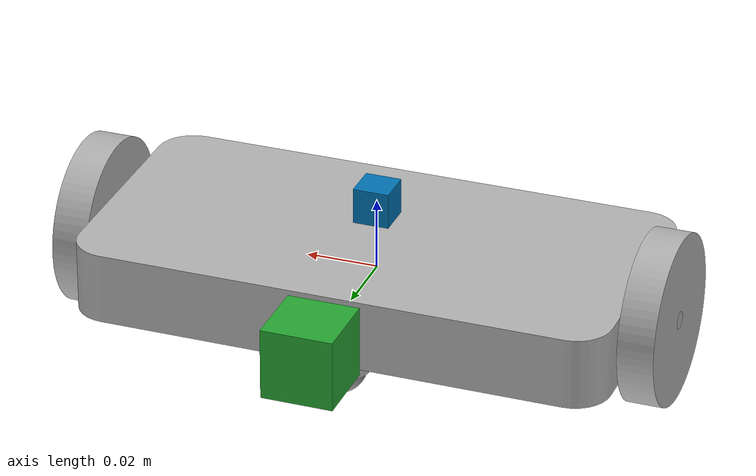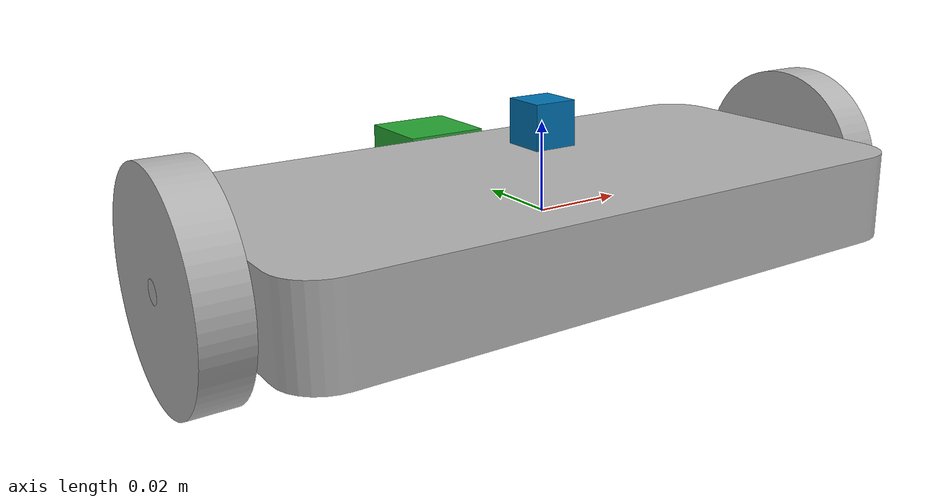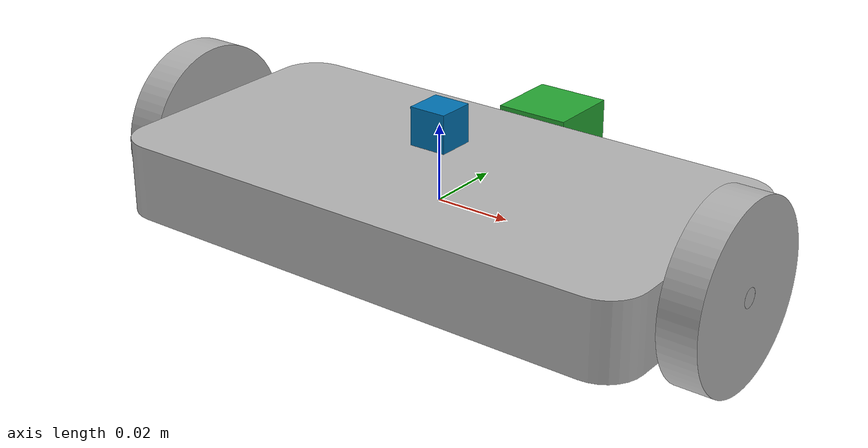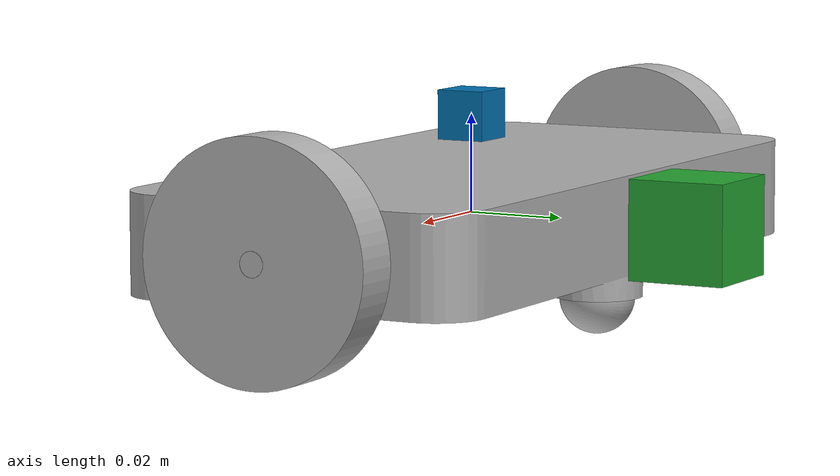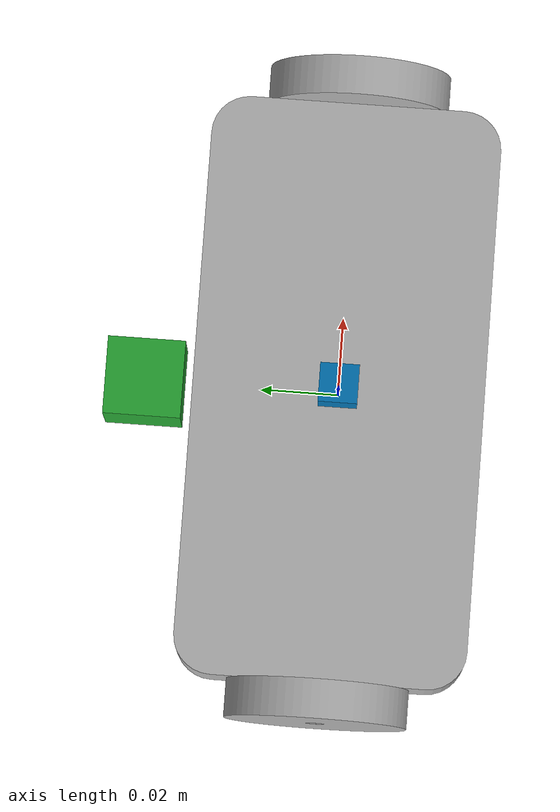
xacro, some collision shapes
<?xml version="1.0" ?>
<robot name="usb" xmlns:xacro="http://www.ros.org/wiki/xacro">

<xacro:include filename="$(find usb_description)/urdf/materials.xacro" />
<xacro:include filename="$(find usb_description)/urdf/usb.trans" />
<xacro:include filename="$(find usb_description)/urdf/usb.gazebo" />

<xacro:property name="cameraSize" value="0.005"/>
<xacro:property name="cameraMass" value="0.1"/>

<link name="base_link">
  <inertial>
    <origin rpy="0 0 0" xyz="-6.998127749700094e-23 5.378861316410096e-05 0.023975572454417362"/>
    <mass value="1.7591494453623584"/>
    <inertia ixx="0.000873" ixy="0.0" ixz="0.0" iyy="0.003319" iyz="1e-06" izz="0.004074"/>
  </inertial>
  <visual>
    <origin rpy="0 0 0" xyz="0 0 0"/>
    <geometry>
      <mesh filename="package://usb_description/meshes/base_link.stl" scale="0.001 0.001 0.001"/>
    </geometry>
    <material name="silver"/>
  </visual>
  <collision>
    <origin rpy="0 0 0" xyz="0 0 0"/>
    <geometry>
      <mesh filename="package://usb_description/meshes/base_link.stl" scale="0.001 0.001 0.001"/>
    </geometry>
  </collision>
</link>

<link name="Castor_1">
  <inertial>
    <origin rpy="0 0 0" xyz="0.0 -7.553609602736766e-08 1.0408340855860843e-17"/>
    <mass value="0.014130675210860253"/>
    <inertia ixx="0.0" ixy="0.0" ixz="0.0" iyy="0.0" iyz="0.0" izz="0.0"/>
  </inertial>
  <visual>
    <origin rpy="0 0 0" xyz="-0.0 -0.028388 -0.009"/>
    <geometry>
      <mesh filename="package://usb_description/meshes/Castor_1.stl" scale="0.001 0.001 0.001"/>
    </geometry>
    <material name="silver"/>
  </visual>
  <collision>
    <origin rpy="0 0 0" xyz="-0.0 -0.028388 -0.009"/>
    <geometry>
      <mesh filename="package://usb_description/meshes/Castor_1.stl" scale="0.001 0.001 0.001"/>
    </geometry>
  </collision>
</link>

<link name="Wheel_1_1">
  <inertial>
    <origin rpy="0 0 0" xyz="0.0050000000000000044 2.4868995751603505e-15 -2.463307335887066e-16"/>
    <mass value="0.13465180272551203"/>
    <inertia ixx="3.8e-05" ixy="0.0" ixz="0.0" iyy="2e-05" iyz="-0.0" izz="2e-05"/>
  </inertial>
  <visual>
    <origin rpy="0 0 0" xyz="0.085 0.0 0.0"/>
    <geometry>
      <mesh filename="package://usb_description/meshes/Wheel_1_1.stl" scale="0.001 0.001 0.001"/>
    </geometry>
    <material name="silver"/>
  </visual>
  <collision>
    <origin rpy="0 0 0" xyz="0.085 0.0 0.0"/>
    <geometry>
      <mesh filename="package://usb_description/meshes/Wheel_1_1.stl" scale="0.001 0.001 0.001"/>
    </geometry>
  </collision>
</link>

<link name="Wheel_2_1">
  <inertial>
    <origin rpy="0 0 0" xyz="-0.0050000000000000044 -2.9753977059954196e-15 -3.122502256758253e-17"/>
    <mass value="0.13465180272551203"/>
    <inertia ixx="3.8e-05" ixy="0.0" ixz="0.0" iyy="2e-05" iyz="-0.0" izz="2e-05"/>
  </inertial>
  <visual>
    <origin rpy="0 0 0" xyz="-0.085 -0.0 0.0"/>
    <geometry>
      <mesh filename="package://usb_description/meshes/Wheel_2_1.stl" scale="0.001 0.001 0.001"/>
    </geometry>
    <material name="silver"/>
  </visual>
  <collision>
    <origin rpy="0 0 0" xyz="-0.085 -0.0 0.0"/>
    <geometry>
      <mesh filename="package://usb_description/meshes/Wheel_2_1.stl" scale="0.001 0.001 0.001"/>
    </geometry>
  </collision>
</link>

<joint name="CastorJoint" type="fixed">
  <origin rpy="0 0 0" xyz="0.0 0.028388 0.009"/>
  <parent link="base_link"/>
  <child link="Castor_1"/>
</joint>

<joint name="Rev2" type="continuous">
  <origin rpy="0 0 0" xyz="-0.085 0.0 0.0"/>
  <parent link="base_link"/>
  <child link="Wheel_1_1"/>
  <axis xyz="1.0 -0.0 -0.0"/>
</joint>

<joint name="Rev3" type="continuous">
  <origin rpy="0 0 0" xyz="0.085 0.0 0.0"/>
  <parent link="base_link"/>
  <child link="Wheel_2_1"/>
  <axis xyz="1.0 0.0 0.0"/>
</joint>

  <joint name="hokuyo_joint" type="fixed">
    <axis xyz="0 1 0" />
    <origin xyz=".0 0 .02" rpy="0 0 0"/>
    <parent link="base_link"/>
    <child link="hokuyo"/>
  </joint>

  <!-- Hokuyo Laser -->
  <link name="hokuyo">
    <collision>
      <origin xyz="0 0 0" rpy="0 0 0"/>
      <geometry>
    <box size="0.01 0.01 0.01"/>
      </geometry>
    </collision>

    <visual>
      <origin xyz="0 0 0" rpy="0 0 0"/>
      <geometry>
        <mesh filename="package://usb_description/meshes/hokuyo.dae" scale="0.3 0.3 0.3" />
      </geometry>
    </visual>

    <inertial>
      <mass value="1e-5" />
      <origin xyz="0 0 0" rpy="0 0 0"/>
      <inertia ixx="1e-6" ixy="0" ixz="0" iyy="1e-6" iyz="0" izz="1e-6" />
    </inertial>
  </link>

<link name = "Front_camera">
  <collision>
    <origin xyz="0 0 0" rpy="0 0 0"/>
    <geometry>
      <box size="0.02 0.02 0.02"/>
    </geometry>
  </collision>

  <visual>
    <origin xyz="0 0 0" rpy="0 0 0"/>
    <geometry>
      <box size="0.02 0.02 0.02"/>
    </geometry>
  </visual>

    <inertial>
      <mass value="0.1" />
      <origin xyz="0 0 0" rpy="0 0 0"/>
      <box_inertia m="0.1" x="0.02" y="0.02" z="0.02" />
      <inertia ixx="1e-6" ixy="0" ixz="0" iyy="1e-6" iyz="0" izz="1e-6" />
    </inertial>
</link>

<joint name="FCamJ" type="fixed">
  <axis xyz="0 0 0"/>
  <origin xyz="0 0.05 0.0" rpy="0 0 0"/>
  <parent link="base_link"/>
  <child link="Front_camera"/>
</joint>

</robot>

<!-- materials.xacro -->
<robot name="usb" xmlns:xacro="http://www.ros.org/wiki/xacro" >

<material name="silver">
  <color rgba="0.700 0.700 0.700 1.000"/>
</material>

</robot>

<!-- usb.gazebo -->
<robot name="usb" xmlns:xacro="http://www.ros.org/wiki/xacro" >

<xacro:property name="body_color" value="Gazebo/Orange" />

<gazebo>
    <plugin name="differential_drive_controller" filename="libgazebo_ros_diff_drive.so">
      <legacyMode>false</legacyMode>
      <alwaysOn>true</alwaysOn>
      <updateRate>10</updateRate>
      <leftJoint>Rev2</leftJoint>
      <rightJoint>Rev3</rightJoint>
      <wheelSeparation>0.17</wheelSeparation>
      <wheelDiameter>0.047</wheelDiameter>
      <torque>10</torque>
      <commandTopic>cmd_vel</commandTopic>
      <odometryTopic>odom</odometryTopic>
      <odometryFrame>odom</odometryFrame>
      <robotBaseFrame>base_link</robotBaseFrame>
    </plugin>
</gazebo>

<gazebo reference="base_link">
  <material>${body_color}</material>
  <mu1>0.2</mu1>
  <mu2>0.2</mu2>
  <selfCollide>true</selfCollide>
  <gravity>true</gravity>
</gazebo>

<gazebo reference="Castor_1">
  <material>Gazebo/Black</material>
  <mu1>0.2</mu1>
  <mu2>0.2</mu2>
  <selfCollide>true</selfCollide>
</gazebo>

<gazebo reference="Wheel_1_1">
  <material>Gazebo/Black</material>
  <mu1>0.2</mu1>
  <mu2>0.2</mu2>
  <selfCollide>true</selfCollide>
</gazebo>

<gazebo reference="Wheel_2_1">
  <material>Gazebo/Black</material>
  <mu1>0.2</mu1>
  <mu2>0.2</mu2>
  <selfCollide>true</selfCollide>
</gazebo>

  <gazebo reference="hokuyo">
    <sensor type="gpu_ray" name="head_hokuyo_sensor">
      <pose>0 0 0 0 0 0</pose>
      <visualize>true</visualize>
      <update_rate>40</update_rate>
      <ray>
        <scan>
          <horizontal>
            <samples>720</samples>
            <resolution>1</resolution>
            <min_angle>0</min_angle>
            <max_angle>3.141592</max_angle>
          </horizontal>
        </scan>
        <range>
          <min>0.10</min>
          <max>30.0</max>
          <resolution>0.01</resolution>
        </range>
        <noise>
          <type>gaussian</type>
          <mean>0.0</mean>
          <stddev>0.01</stddev>
        </noise>
      </ray>
      <plugin name="gazebo_ros_head_hokuyo_controller" filename="libgazebo_ros_gpu_laser.so">
        <topicName>/usb/laser/scan</topicName>
        <frameName>hokuyo</frameName>
      </plugin>
    </sensor>
  </gazebo>

<gazebo reference="Front_camera">
  <material>Gazebo/Green</material>
  <sensor type="camera" name="FrontCam">
    <update_rate>30.0</update_rate>
    <camera name="head">
      <horizontal_fov>1.3962634</horizontal_fov>
      <image>
        <width>800</width>
        <height>800</height>
        <format>R8G8B8</format>
      </image>
      <clip>
        <near>0.02</near>
        <far>300</far>
      </clip>
      <noise>
        <type>gaussian</type>
        <mean>0.0</mean>
        <stddev>0.007</stddev>
      </noise>
    </camera>
    <plugin name="camera_controller" filename="libgazebo_ros_camera.so">
      <alwaysOn>true</alwaysOn>
      <updateRate>0.0</updateRate>
      <cameraName>usb/camera1</cameraName>
      <imageTopicName>image_raw</imageTopicName>
      <cameraInfoTopicName>camera_info</cameraInfoTopicName>
      <frameName>Front_camera</frameName>
      <hackBaseline>0.07</hackBaseline>
      <distortionK1>0.0</distortionK1>
      <distortionK2>0.0</distortionK2>
      <distortionK3>0.0</distortionK3>
      <distortionT1>0.0</distortionT1>
      <distortionT2>0.0</distortionT2>
    </plugin>
  </sensor>
</gazebo>

</robot>
